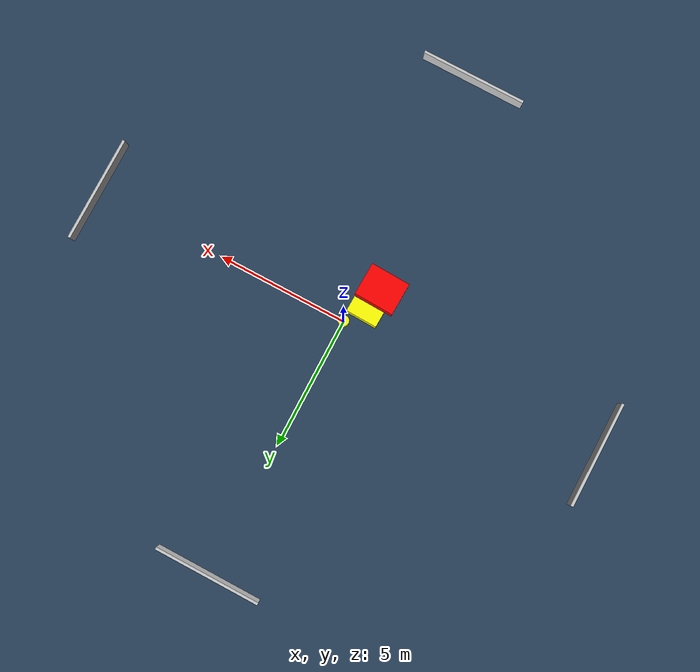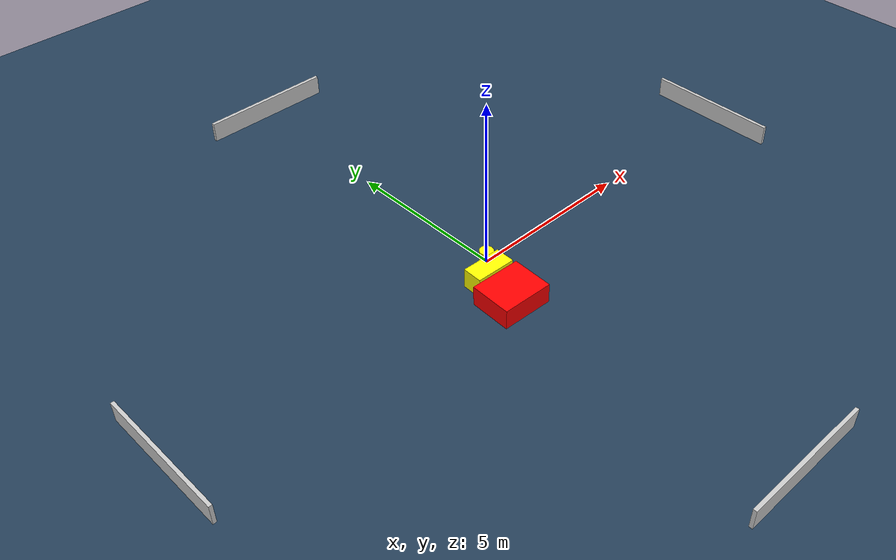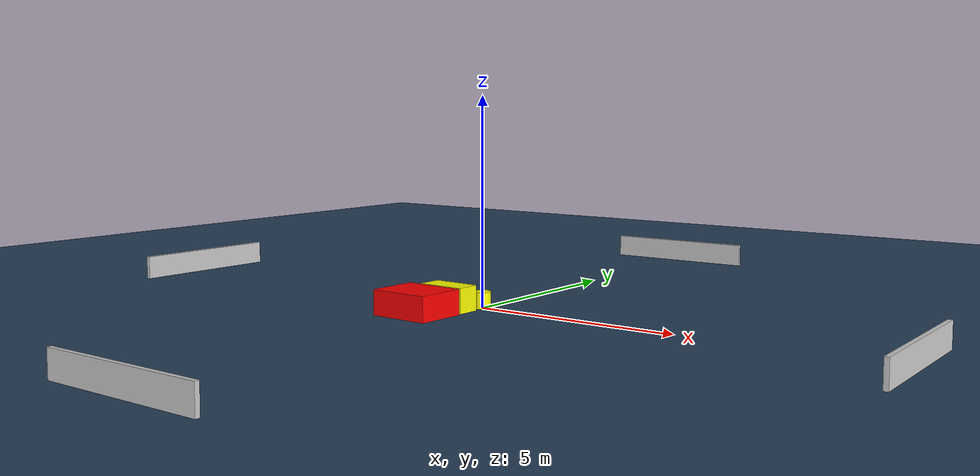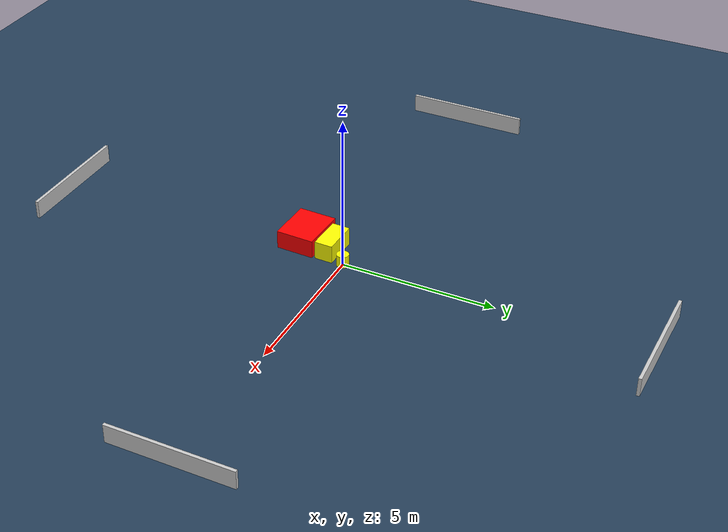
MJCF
<?xml version="1.0" ?>
<mujoco model="generated_environment">
  <option timestep="0.01" integrator="RK4" cone="elliptic"/>
  <default>
    <geom density="1"/>
  </default>
  <asset>
    <texture builtin="gradient" height="3072" name="skybox" rgb1="0.3 0.5 0.7" rgb2="0 0 0" type="skybox" width="512"/>
    <texture builtin="checker" height="300" name="groundplane" rgb1="0.2 0.3 0.4" rgb2="0.1 0.2 0.3" type="2d" width="300"/>
    <material name="groundplane" reflectance="0.2" texrepeat="5 5" texture="groundplane"/>
  </asset>
  <worldbody>
    <light dir="0 0 -1" directional="true" pos="0 0 1.5"/>
    <geom condim="3" friction="0.5 0.005 0.001" material="groundplane" name="floor" pos="0 0 0" size="0 0 0.05" type="plane"/>
    <body name="walls">
      <geom name="wall_1" condim="4" pos="-10.0 0.0 0.3" rgba="0.800000011920929 0.800000011920929 0.800000011920929 1.0" size="0.05 2.0 0.3" type="box"/>
      <geom name="wall_2" condim="4" pos="10.0 0.0 0.3" rgba="0.800000011920929 0.800000011920929 0.800000011920929 1.0" size="0.05 2.0 0.3" type="box"/>
      <geom name="wall_3" condim="4" pos="0.0 -10.0 0.3" rgba="0.800000011920929 0.800000011920929 0.800000011920929 1.0" size="2.0 0.05 0.3" type="box"/>
      <geom name="wall_4" condim="4" pos="0.0 10.0 0.3" rgba="0.800000011920929 0.800000011920929 0.800000011920929 1.0" size="2.0 0.05 0.3" type="box"/>
    </body>
    <body name="robot">
      <joint name="joint_x" type="slide" pos="0 0 0" axis="1 0 0"/>
      <joint name="joint_y" type="slide" pos="0 0 0" axis="0 1 0"/>
      <geom name="robot" type="cylinder" pos="0.0 0.0 0.2" size="0.2 0.2 0.0" mass="5.0" friction="1.0 0.005 0.0001" condim="4" rgba="1.0 1.0 0.0 1.0"/>
    </body>
    <body name="obstacle_1_movable">
      <geom name="obstacle_1_movable" condim="4" pos="-0.5272817807541662 -0.6249449068925464 0.3" euler="0 0 268.34161160025565" friction="0.0 0.005 0.001" rgba="1.0 1.0 0.0 1.0" size="0.29574993692614227 0.5938746018138983 0.3" type="box" mass="0.1"/>
      <joint type="free"/>
    </body>
    <body name="obstacle_2_static">
      <geom name="obstacle_2_static" condim="4" pos="-0.6817690617121611 -1.6133265258897223 0.3" euler="0 0 178.0235889210294" friction="0.0 0.005 0.001" rgba="1.0 0.0 0.0 1.0" size="0.7540040542851798 0.6196679758982309 0.3" type="box"/>
    </body>
  </worldbody>
  <actuator>
    <motor name="actuator_x" joint="joint_x" gear="1" ctrlrange="-1 1"/>
    <motor name="actuator_y" joint="joint_y" gear="1" ctrlrange="-1 1"/>
  </actuator>
</mujoco>
